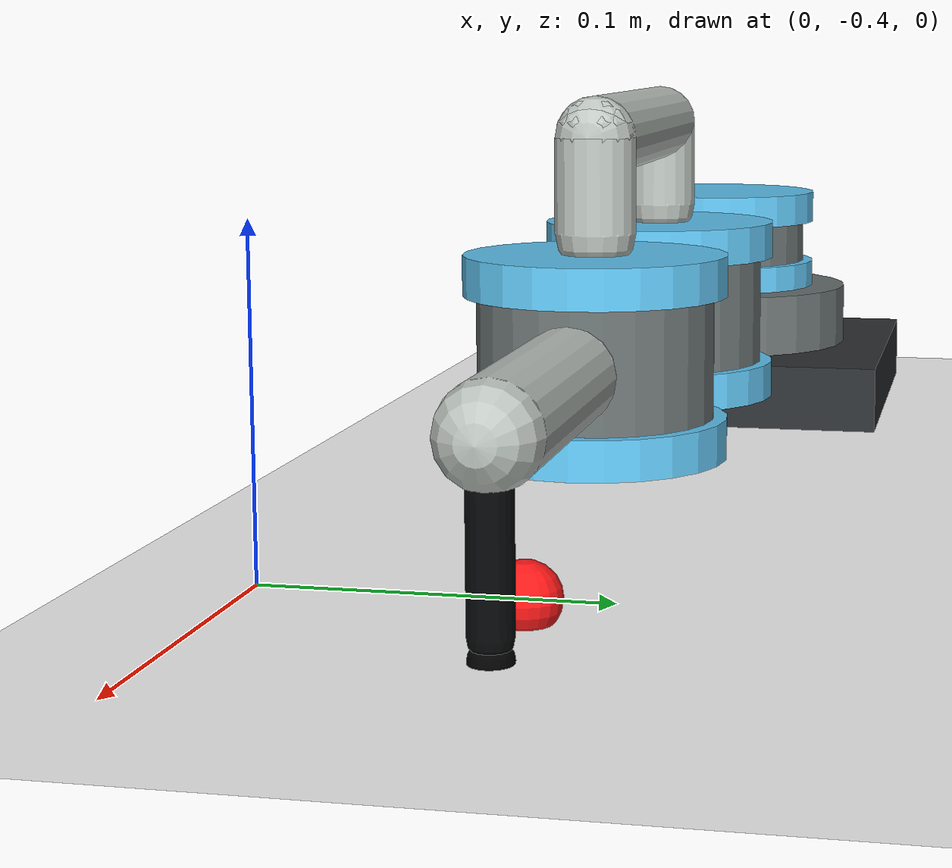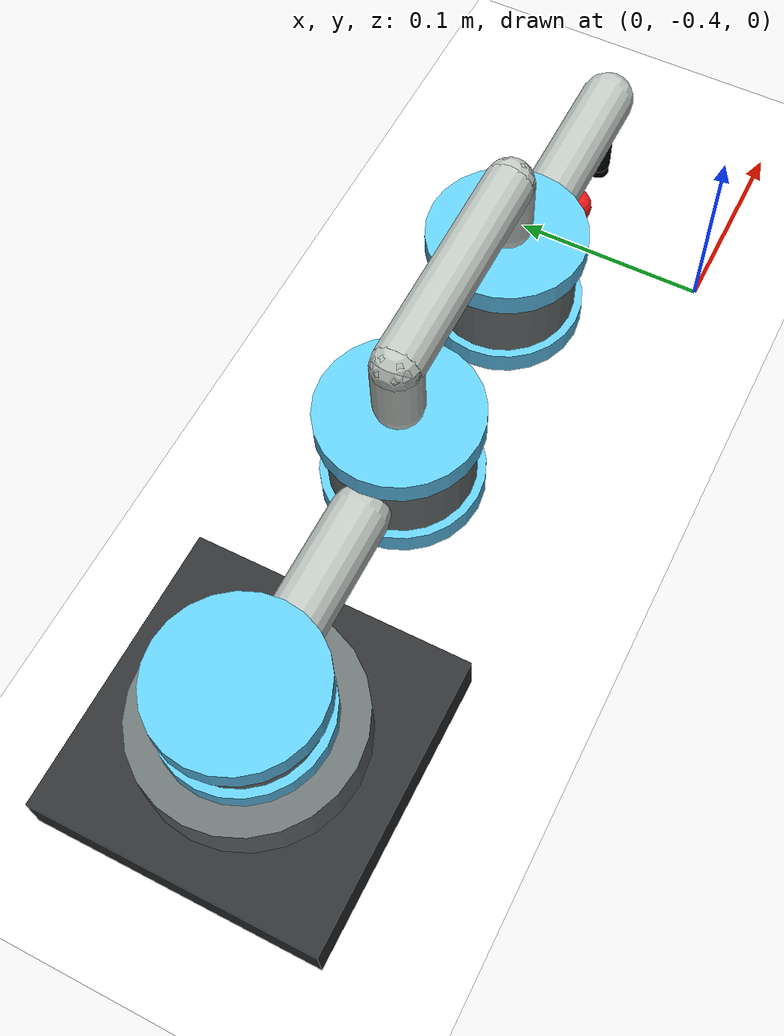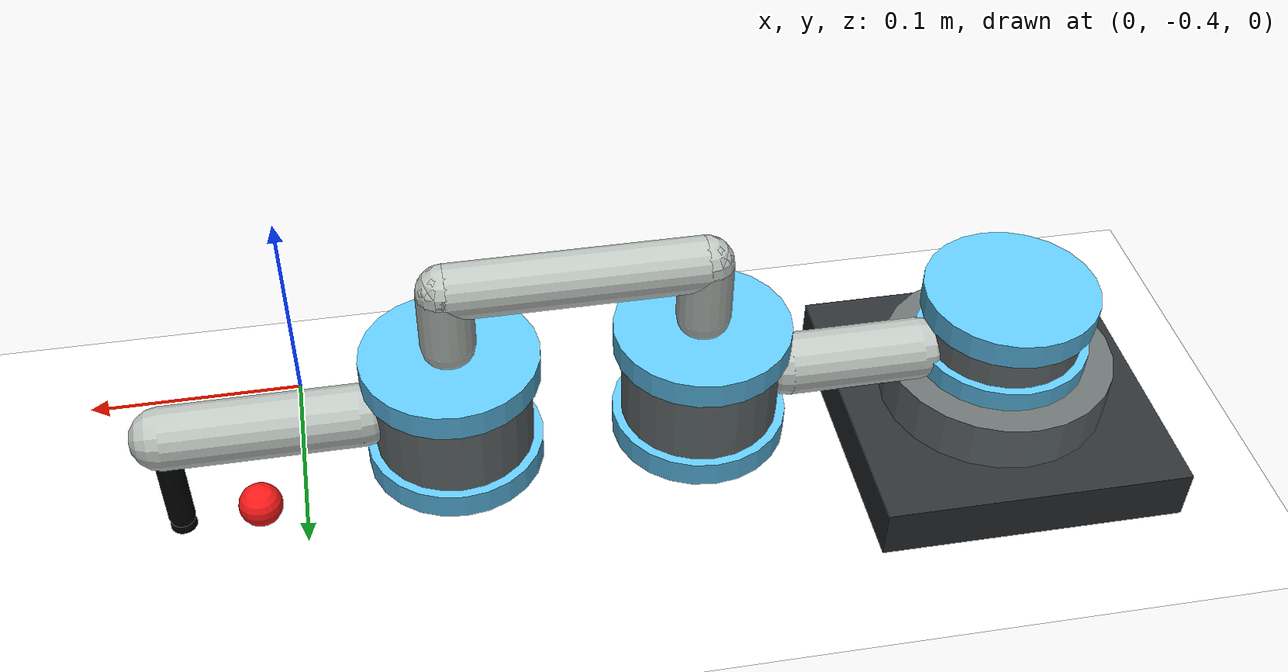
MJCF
<mujoco model="3r_planar_pen_robot">
  <compiler angle="degree" coordinate="local" autolimits="true"/>

  <option timestep="0.002" integrator="RK4" gravity="0 0 -9.81"/>

  <default>
    <joint damping="0.5" armature="0.01"/>
    <geom condim="3" friction="0.8 0.1 0.1"/>
    <default class="link">
      <geom type="capsule" size="0.014" material="link_metal"/>
    </default>
    <default class="raised_link">
      <geom type="capsule" size="0.012" material="link_metal"/>
    </default>
    <default class="joint_housing">
      <geom type="cylinder" size="0.035 0.018" material="joint_metal"/>
    </default>
    <default class="joint_cap">
      <geom type="cylinder" size="0.039 0.006" material="cap_blue" contype="0" conaffinity="0"/>
    </default>
  </default>

  <asset>
    <material name="white_surface" rgba="1 1 1 1"/>
    <material name="pen_black" rgba="0.02 0.025 0.03 1"/>
    <material name="base_dark" rgba="0.18 0.19 0.2 1"/>
    <material name="joint_metal" rgba="0.42 0.45 0.45 1" specular="0.45" shininess="0.35"/>
    <material name="link_metal" rgba="0.74 0.77 0.75 1" specular="0.65" shininess="0.55"/>
    <material name="cap_blue" rgba="0.38 0.78 0.96 1" specular="0.25" shininess="0.2"/>
  </asset>

  <worldbody>
    <light name="key_light" pos="0 -0.6 1.2" dir="0 0.4 -1" diffuse="0.9 0.9 0.9"/>
    <camera name="top_view" pos="0.2 0 1.2" xyaxes="0 1 0 -1 0 0"/>
    <camera name="side_view" pos="0.25 -0.8 0.25" xyaxes="1 0 0 0 0 1"/>

    <geom name="writing_surface" type="plane" pos="0 0 0" size="0.45 0.45 0.01" material="white_surface"/>
    <site name="target_marker" pos="0.02 -0.32 0.006" size="0.01" rgba="1 0.1 0.1 1"/>

    <body name="base" pos="-0.32 -0.32 0.055">
      <geom name="base_plate" type="box" pos="0 0 -0.043" size="0.07 0.07 0.012" material="base_dark"/>
      <geom name="base_turntable" type="cylinder" pos="0 0 -0.022" size="0.052 0.014" material="joint_metal"/>
      <geom name="base_cap" class="joint_cap" pos="0 0 -0.004"/>

      <body name="link1" pos="0 0 0">
        <joint name="joint1" type="hinge" axis="0 0 1" range="-180 180"/>
        <geom name="link1_bar" class="link" fromto="0.040 0 0 0.100 0 0"/>
        <geom name="joint1_hub" class="joint_housing"/>
        <geom name="joint1_cap_top" class="joint_cap" pos="0 0 0.024"/>
        <geom name="joint1_cap_bottom" class="joint_cap" pos="0 0 -0.024"/>

        <body name="link2_bridge" pos="0.14 0 0">
          <joint name="joint2" type="hinge" axis="0 0 1" range="-160 160"/>
          <geom name="joint2_hub" class="joint_housing"/>
          <geom name="joint2_cap_top" class="joint_cap" pos="0 0 0.024"/>
          <geom name="joint2_cap_bottom" class="joint_cap" pos="0 0 -0.024"/>
          <geom name="link2_riser_up" class="raised_link" fromto="0 0 0.036 0 0 0.064"/>
          <geom name="link2_raised_bar" class="raised_link" fromto="0 0 0.064 0.11 0 0.064"/>
          <geom name="link2_riser_down" class="raised_link" fromto="0.11 0 0.064 0.11 0 0.036"/>

          <body name="link3" pos="0.11 0 0">
            <joint name="joint3" type="hinge" axis="0 0 1" range="-180 180"/>
            <geom name="joint3_hub" class="joint_housing"/>
            <geom name="joint3_cap_top" class="joint_cap" pos="0 0 0.024"/>
            <geom name="joint3_cap_bottom" class="joint_cap" pos="0 0 -0.024"/>
            <geom name="link3_bar" class="link" fromto="0.040 0 0 0.125 0 0"/>

            <body name="pen" pos="0.125 0 0">
              <geom name="pen_body" type="capsule" fromto="0 0 0 0 0 -0.049" size="0.006" material="pen_black"/>
              <site name="pen_tip" pos="0 0 -0.055" size="0.006" rgba="0 0 0 1"/>
            </body>
          </body>
        </body>
      </body>
    </body>
  </worldbody>

  <actuator>
    <motor name="joint1_motor" joint="joint1" gear="0.2" ctrllimited="true" ctrlrange="-1 1"/>
    <motor name="joint2_motor" joint="joint2" gear="0.2" ctrllimited="true" ctrlrange="-1 1"/>
    <motor name="joint3_motor" joint="joint3" gear="0.2" ctrllimited="true" ctrlrange="-1 1"/>
  </actuator>

  <keyframe>
    <key name="writing_pose" qpos="35 -50 45"/>
  </keyframe>
</mujoco>
